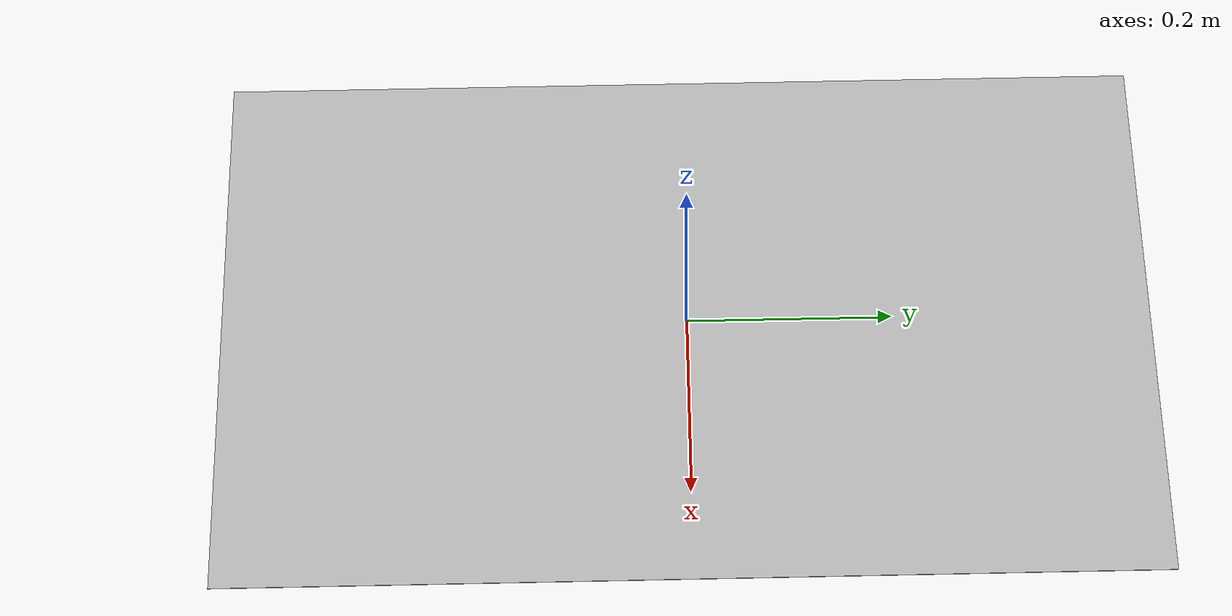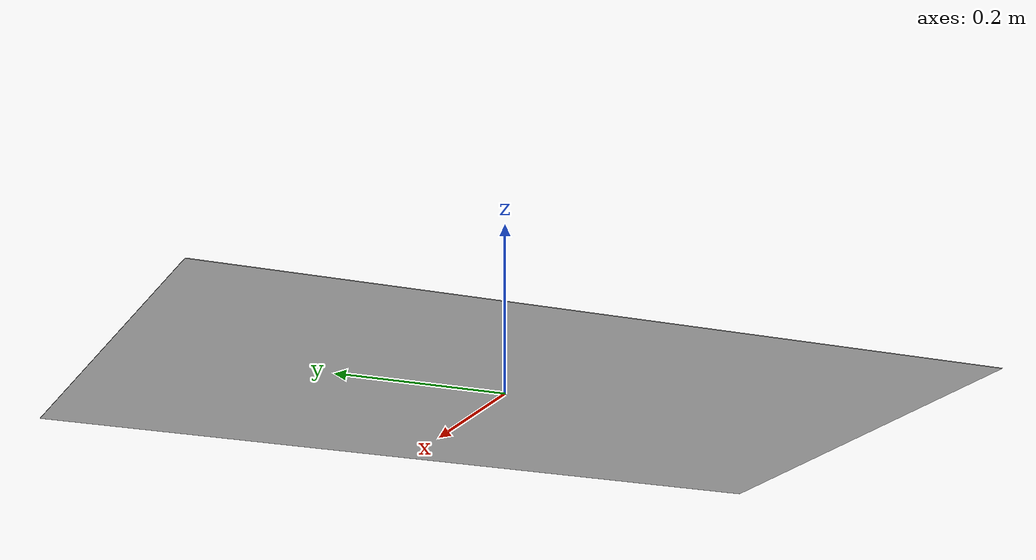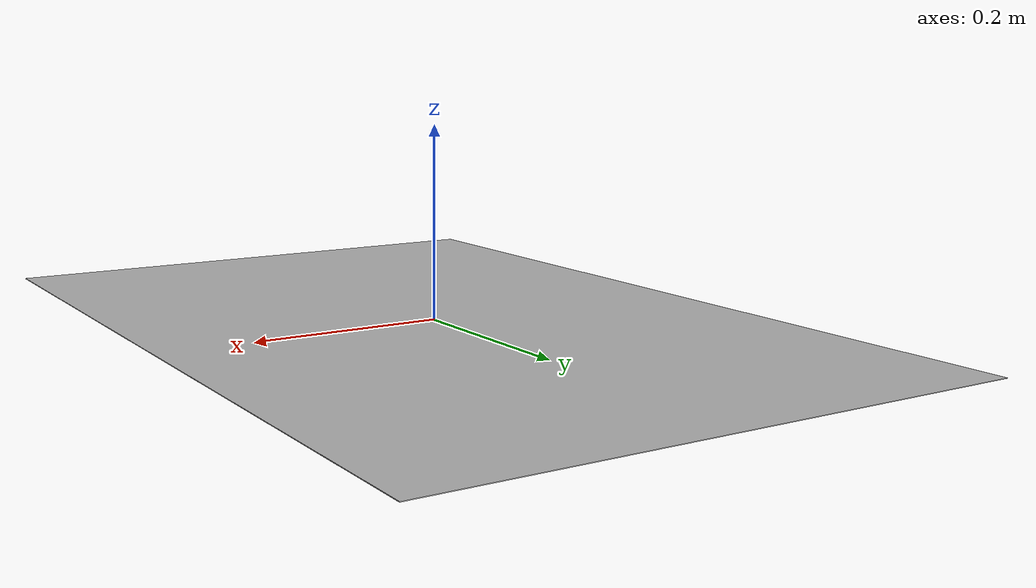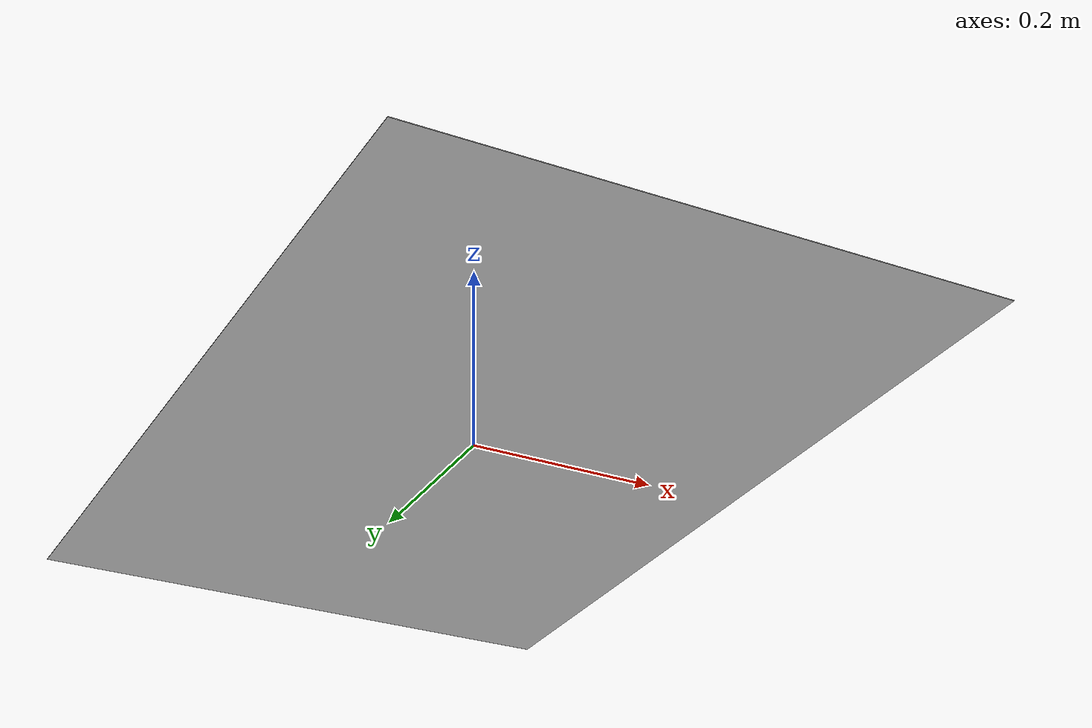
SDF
<?xml version="1.0" encoding="UTF-8"?>
<sdf version="1.4">
   <model name="vc_black_track_straight">
      <static>true</static>
      <link name="link">
         <collision name="collision">
            <geometry>
               <plane>
                  <normal>0 0 1</normal>
                  <size>0.596 0.905</size>
               </plane>
            </geometry>
            <surface>
               <friction>
                  <ode>
                     <mu>100</mu>
                     <mu2>50</mu2>
                  </ode>
               </friction>
            </surface>
         </collision>
         <visual name="visual">
            <cast_shadows>false</cast_shadows>
            <geometry>
               <plane>
                  <normal>0 0 1</normal>
                  <size>0.596 0.905</size>
               </plane>
            </geometry>
            <material>
               <script>
                  <uri>model://vc_black_track_straight/materials/scripts</uri>
                  <uri>model://vc_black_track_straight/materials/textures/</uri>
                  <name>VC_Black_Track_Straight/Image</name>
               </script>
            </material>
         </visual>
      </link>
   </model>
</sdf>
